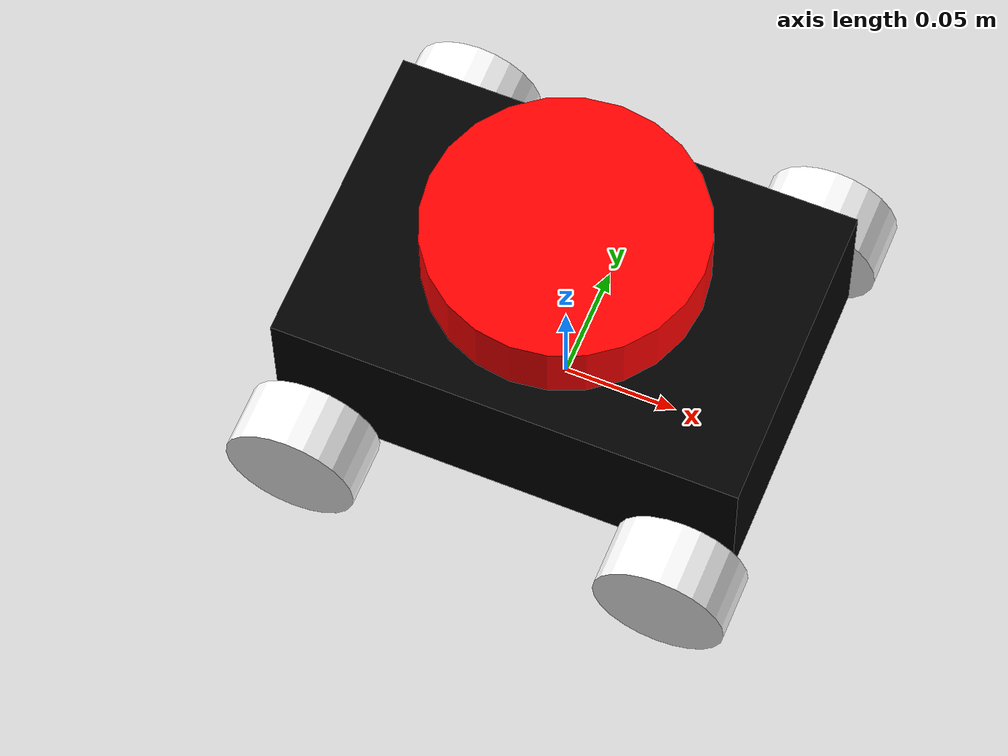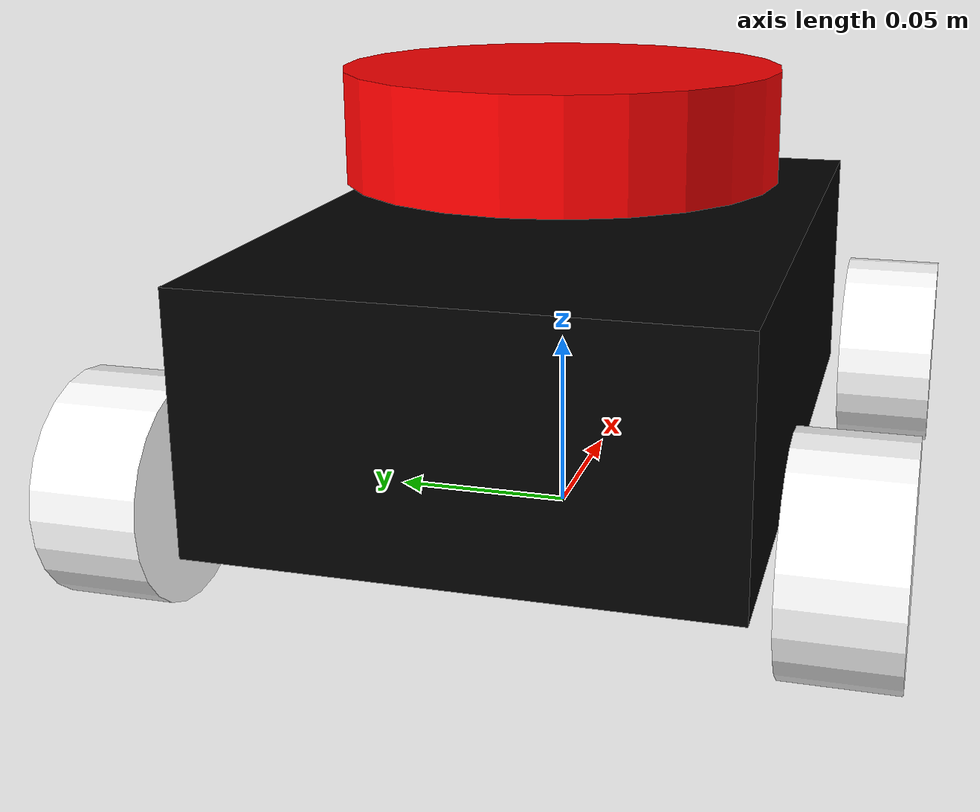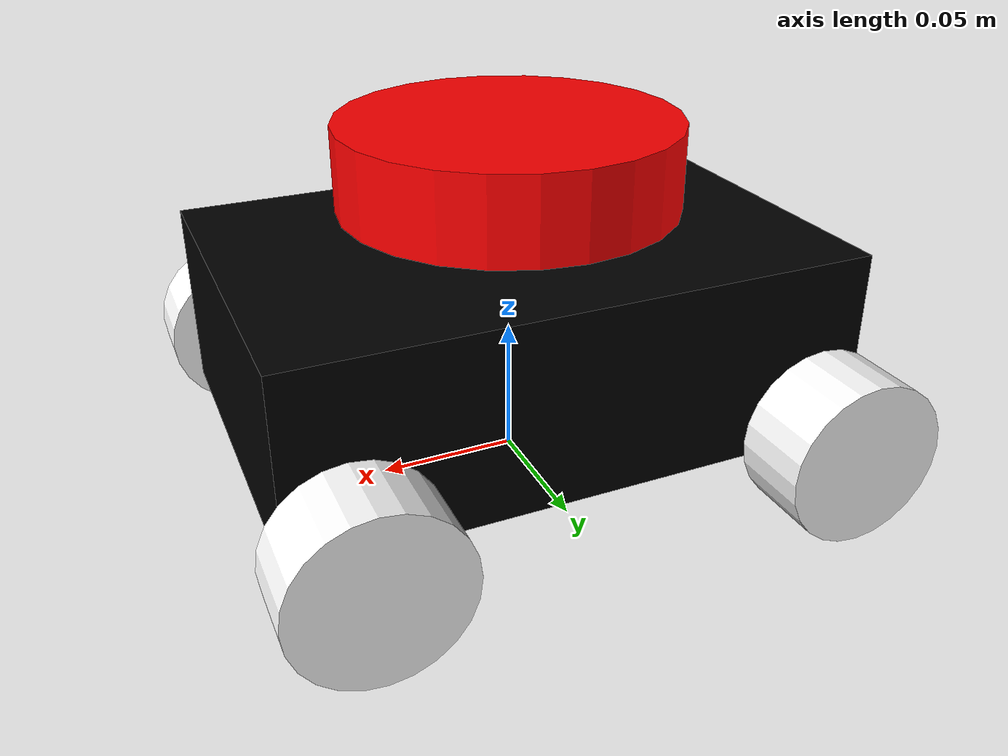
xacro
<?xml version="1.0"?>
<robot name="my_robot" xmlns:xacro="http://www.ros.org/wiki/xacro">

  <!-- Thông số kỹ thuật của robot -->
  <!--
    Body: 205 x 138 x 68 mm
    Wheel: 58 x 28 mm
    Chất liệu: Nhựa ABS
  -->

  <!-- Tham số vật liệu -->
  <xacro:property name="density" value="1050"/> <!-- kg/m3 -->
  <xacro:property name="pi" value="3.141592653589793"/>

  <!-- Tham số khung chassis -->
  <xacro:property name="chassis_length" value="0.205"/>
  <xacro:property name="chassis_width"  value="0.138"/>
  <xacro:property name="chassis_height" value="0.068"/>
  <xacro:property name="chassis_volume" value="${chassis_length * chassis_width * chassis_height}"/>
  <xacro:property name="chassis_mass"   value="${chassis_volume * density}"/>

  <!-- Tham số bánh xe -->
  <xacro:property name="wheel_diameter" value="0.058"/>
  <xacro:property name="wheel_radius" value="${wheel_diameter / 2}"/>
  <xacro:property name="wheel_length" value="0.028"/>
  <xacro:property name="wheel_volume" value="${wheel_radius*wheel_radius * pi * wheel_length}"/>
  <xacro:property name="wheel_mass"   value="${wheel_volume * density}"/>

  <!-- Lidar link -->
  <link name="lidar_link">
   <visual>
     <geometry>
       <cylinder radius="0.06" length="0.03"/>
     </geometry>
     <material name="red"/>
   </visual>
   <collision>
     <geometry>
       <cylinder radius="0.06" length="0.03"/>
     </geometry>
   </collision>
   <inertial>
     <mass value="0.1"/>
     <inertia ixx="0.001" iyy="0.001" izz="0.001" ixy="0.0" ixz="0.0" iyz="0.0"/>
   </inertial>
 </link>

  <!-- Vị trí bánh xe so với khung chassis -->
  <xacro:property name="margin_x" value="0.02"/>
  <xacro:property name="margin_y" value="0.02"/>
  <xacro:property name="margin_z" value="0.01"/>

  <xacro:property name="x_position" value="${chassis_length / 2 - margin_x}"/>
  <xacro:property name="y_position"  value="${chassis_width / 2 + margin_y}"/>
  <xacro:property name="z_position" value="${chassis_height / 2 - margin_z}"/>

  <!-- Inertia của hình hộp -->
  <xacro:macro name="box_inertia" params="m x y z">
    <inertial>
      <origin xyz="0 0 0" rpy="0 0 0"/>
      <mass value="${m}"/>
      <inertia
        ixx="${m/12.0*(y*y+z*z)}" ixy="0.0" ixz="0.0"
        iyy="${m/12.0*(x*x+z*z)}" iyz="0.0"
        izz="${m/12.0*(x*x+y*y)}"/>
    </inertial>
  </xacro:macro>

  <!-- Inertia của hình trụ -->
  <xacro:macro name="cylinder_inertia" params="m r h">
    <inertial>
      <origin xyz="0 0 0" rpy="${pi/2} 0 0"/>
      <mass value="${m}"/>
      <inertia
        ixx="${m/12.0*(3*r*r+h*h)}" ixy="0.0" ixz="0.0"
        iyy="${m/12.0*(3*r*r+h*h)}" iyz="0.0"
        izz="${m/2.0*r*r}"/>
    </inertial>
  </xacro:macro>

  <!-- Xử lý bánh xe -->
  <xacro:macro name="wheel" params="prefix x_pos y_pos z_pos y_reflect">
    <link name="${prefix}_wheel">
      <visual>
        <origin xyz="0 0 0" rpy="${pi/2} 0 0"/>
        <geometry>
          <cylinder radius="${wheel_radius}" length="${wheel_length}"/>
        </geometry>
        <material name="white"/>
      </visual>
      <collision>
        <origin xyz="0 0 0" rpy="${pi/2} 0 0"/>
        <geometry>
          <cylinder radius="${wheel_radius}" length="${wheel_length}"/>
        </geometry>
      </collision>
      <xacro:cylinder_inertia m="${wheel_mass}" r="${wheel_radius}" h="${wheel_length}"/>
    </link>

    <joint name="${prefix}_wheel_joint" type="continuous">
      <parent link="chassis"/>
      <child  link="${prefix}_wheel"/>
      <origin xyz="${x_pos} ${y_pos} ${z_pos}" rpy="0 0 ${(1 - y_reflect) * pi / 2}"/>
      <axis xyz="0 ${y_reflect} 0"/>
      <dynamics damping="0.05" friction="0.05"/>
    </joint>
  </xacro:macro>

  <!-- Màu sắc vật liệu -->
  <material name="black">
    <color rgba="0 0 0 1"/>
  </material>

  <material name="white">
    <color rgba="1 1 1 1"/>
  </material>

  <!-- Link gốc của robot -->
 <material name="red">	122	<!-- Link gốc của robot -->
<color rgba="1 0 0 1"/>	123	<link name="base_link"/>
</material>

<link name="base_link">
<inertial>
<mass value="0.001"/>
<inertia ixx="1e-6" ixy="0" ixz="0" iyy="1e-6" iyz="0" izz="1e-6"/>
</inertial>
	</link>

  <link name="chassis">
    <visual>
      <geometry>
        <box size="${chassis_length} ${chassis_width} ${chassis_height}"/>
      </geometry>
      <material name="black"/>
    </visual>
    <collision>
      <geometry>
        <box size="${chassis_length} ${chassis_width} ${chassis_height}"/>
      </geometry>
    </collision>
    <xacro:box_inertia m="${chassis_mass}"
                       x="${chassis_length}"
                       y="${chassis_width}"
                       z="${chassis_height}"/>
  </link>

  <joint name="chassis_joint" type="fixed">
    <parent link="base_link"/>
    <child  link="chassis"/>
    <origin xyz="0 0 ${wheel_radius + z_position}" rpy="0 0 0"/>
  </joint>

  <!-- Vị trí của bánh xe so với base - link -->
  <xacro:wheel prefix="front_right" x_pos="${x_position}"  y_pos="-${y_position}" z_pos="-${z_position}" y_reflect="-1"/>
  <xacro:wheel prefix="front_left"  x_pos="${x_position}"  y_pos="${y_position}"  z_pos="-${z_position}" y_reflect="1"/>
  <xacro:wheel prefix="rear_right"  x_pos="-${x_position}" y_pos="-${y_position}" z_pos="-${z_position}" y_reflect="-1"/>
  <xacro:wheel prefix="rear_left"   x_pos="-${x_position}" y_pos="${y_position}"  z_pos="-${z_position}" y_reflect="1"/>

 <!-- Joint between base_link and lidar_link -->
 <joint name="lidar_joint" type="fixed">
   <parent link="base_link"/>
   <child link="lidar_link"/>
   <origin xyz="0 0 ${chassis_height + 0.045}" rpy="0 0 0"/>
 </joint>

 <!-- Lidar sensor -->
 <gazebo reference="lidar_link">
   <sensor type="ray" name="lidar">
   <pose>0 0 0 0 0 0</pose>
     <visualize>true</visualize>
     <ray>
       <scan>
         <horizontal>
           <samples>360</samples>
           <resolution>1</resolution>
           <min_angle>-3.14159</min_angle>
           <max_angle>3.14159</max_angle>
         </horizontal>
       </scan>
       <range>
         <min>0.1</min>
         <max>10.0</max>
       </range>
       <noise>
         <type>gaussian</type>
         <mean>0.0</mean>
         <stddev>0.01</stddev>
       </noise>
     </ray>
      <plugin name="gazebo_ros_laser" filename="libgazebo_ros_ray_sensor.so">
        <ros>
          <remapping>~/out:=agv_scan</remapping>
        </ros>
        <output_type>sensor_msgs/LaserScan</output_type>
        <update_rate>10.0</update_rate>
      </plugin>
   </sensor>
 </gazebo>

  <xacro:include filename="gazebo.xacro"/>

</robot>
